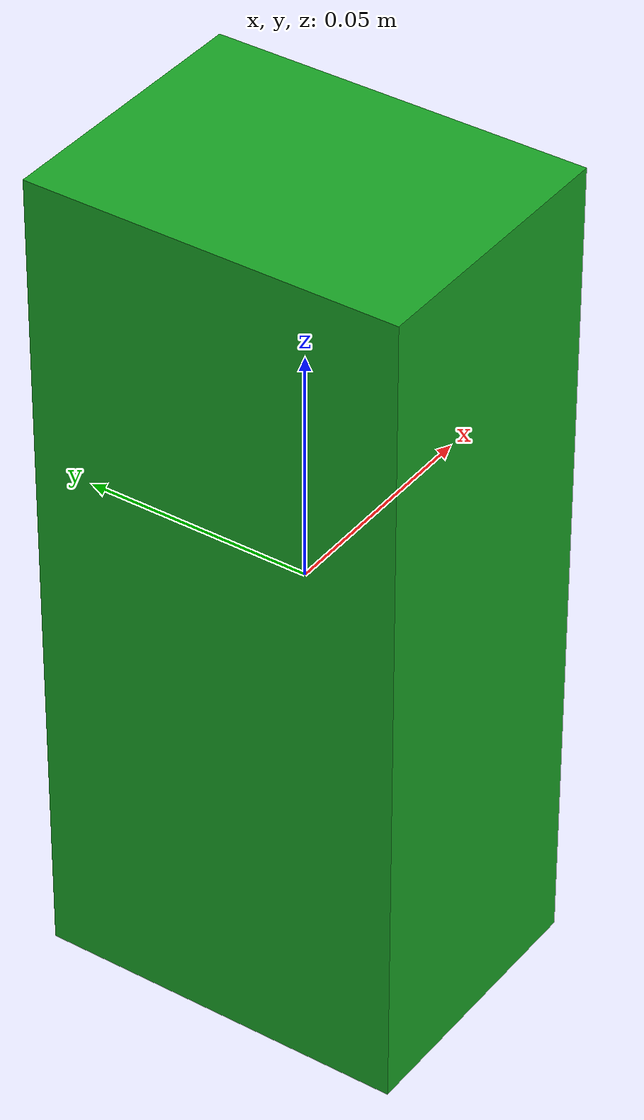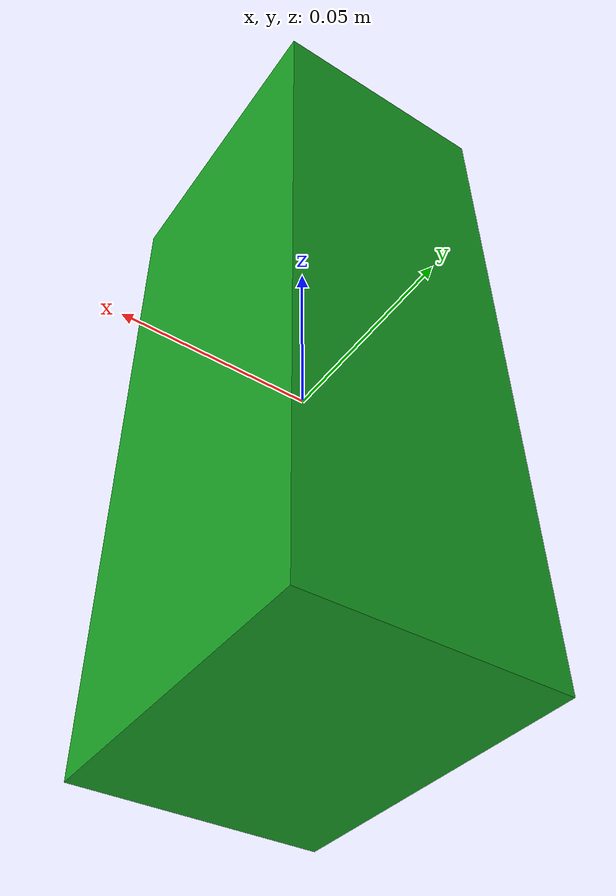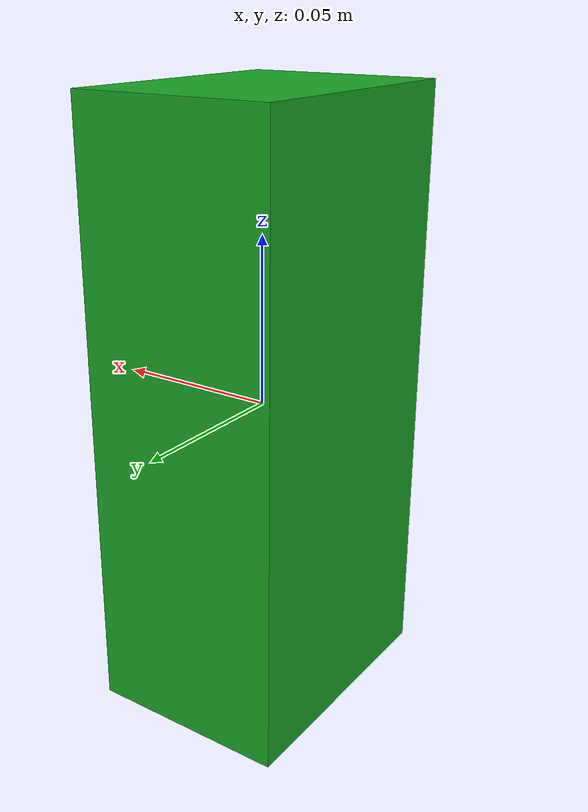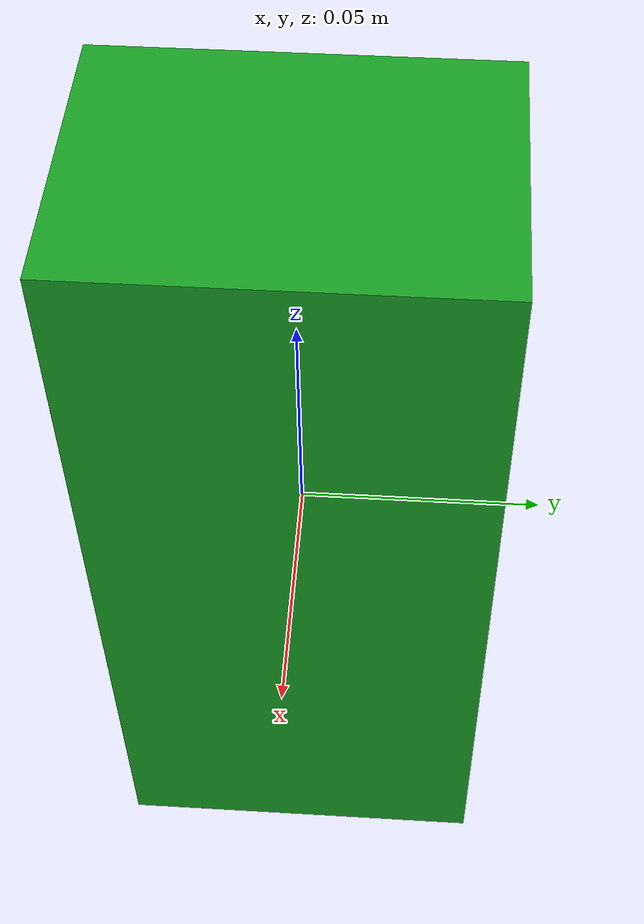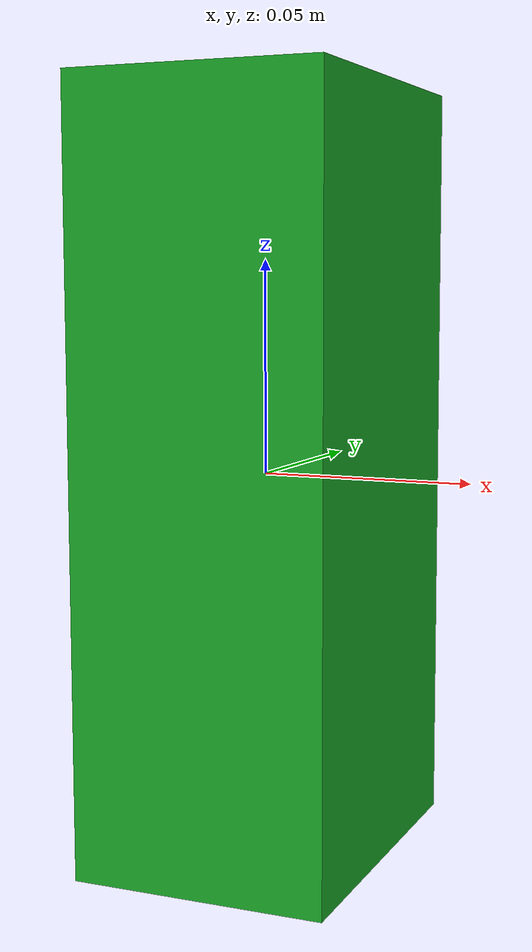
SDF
<?xml version="1.0"?>
<sdf version="1.9">
  <model name="cracker_box">
    <link name="link">
      <inertial>
        <mass>0.25</mass>
        <inertia>
          <ixx>8.08e-4</ixx><iyy>7.50e-4</iyy><izz>2.08e-4</izz>
          <ixy>0</ixy><ixz>0</ixz><iyz>0</iyz>
        </inertia>
      </inertial>
      <collision name="col">
        <geometry><box><size>0.06 0.08 0.18</size></box></geometry>
        <surface>
          <friction><ode><mu>1.2</mu><mu2>1.2</mu2></ode></friction>
        </surface>
      </collision>
      <visual name="body">
        <geometry><box><size>0.06 0.08 0.18</size></box></geometry>
        <material>
          <ambient>0.1 0.65 0.15 1</ambient>
          <diffuse>0.1 0.65 0.15 1</diffuse>
          <specular>0.2 0.2 0.2 1</specular>
        </material>
      </visual>
    </link>
  </model>
</sdf>
